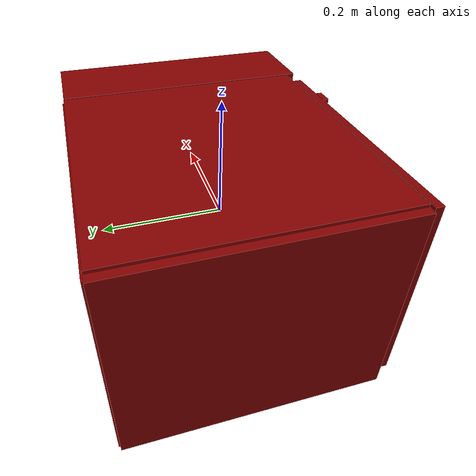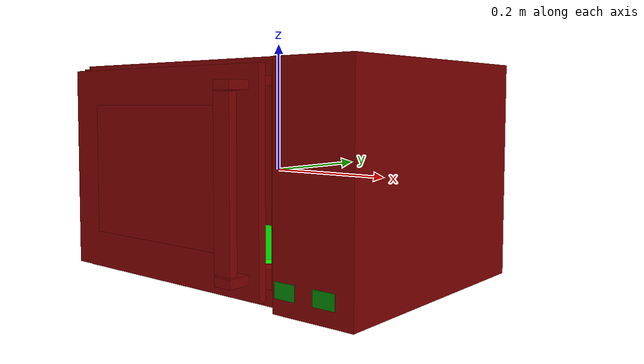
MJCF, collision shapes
<?xml version='1.0' encoding='UTF-8'?>
<mujoco model="model">
  <option timestep="0.002" gravity="0.0 0.0 -9.81"/>
  <compiler angle="radian"/>
  <asset>
    <mesh file="visuals/door.obj" name="door_vis"/>
    <mesh file="visuals/door_Clear.obj" name="door_Clear_vis"/>
    <mesh file="visuals/Body001.obj" name="Body001_vis"/>
    <mesh file="visuals/Disc001.obj" name="Disc001_vis"/>
    <texture file="visuals/T_BC001.png" name="Body001_material" type="2d"/>
    <material name="Body001_material" rgba="1 1 1 1.0" texture="Body001_material" shininess="0.2512328028678894" specular="1.5"/>
    <texture file="visuals/T_BC001.png" name="door_material" type="2d"/>
    <material name="door_material" rgba="1 1 1 1.0" texture="door_material" shininess="0.2512328028678894" specular="1"/>
    <texture file="visuals/T_BC001.png" name="door_Clear_material" type="2d"/>
    <material name="door_Clear_material" rgba="1 1 1 0.8999999761581421" texture="door_Clear_material" shininess="0.2512328028678894" specular="0.3103448502657381"/>
    <texture file="visuals/T_BC001.png" name="Disc001_material" type="2d"/>
    <material name="Disc001_material" rgba="1 1 1 1.0" texture="Disc001_material" shininess="0.2512328028678894" specular="2"/>
  </asset>
  <default>
    <default class="visual">
      <geom conaffinity="0" contype="0" group="1" type="mesh"/>
    </default>
    <default class="collision">
      <geom group="0" rgba="0.5 0 0 0.5"/>
    </default>
    <default class="spawn">
      <geom group="0" rgba="1 1 1 0.5" contype="0" conaffinity="0"/>
      <site group="0" rgba="1 1 1 0.5"/>
    </default>
    <default class="region">
      <geom group="1" conaffinity="0" contype="0" rgba="0 1 0 0"/>
    </default>
  </default>
  <worldbody>
    <body>
      <body name="object">
        <geom class="collision" type="box" pos="0.18293899297714233 -0.1981738805770874 -0.13036344945430756" size="0.01684289053082466 0.0006300018285401165 0.010966268368065357" quat="1.0 0.0 0.0 0.0" name="start_button" rgba="0.0 0.5 0 0.5"/>
        <geom class="collision" type="box" pos="0.24534033238887787 -0.1981738805770874 -0.13036344945430756" size="0.016928493976593018 0.0006300018285401165 0.010966268368065357" quat="1.0 0.0 0.0 0.0" name="stop_button" rgba="0.0 0.5 0 0.5"/>
        <geom class="collision" type="cylinder" pos="-0.07113268226385117 0.0006413441151380539 -0.12782007455825806" size="0.15812909603118896 0.002860583132132888" quat="1.0 0.0 0.0 0.0" name="tray" rgba="0 1 0 0.5"/>
        <geom mesh="Body001_vis" type="mesh" solimp="0.998 0.998 0.001" solref="0.001 1" friction="0.95 0.3 0.1" class="visual" material="Body001_material"/>
        <geom class="collision" type="box" pos="-0.2728177011013031 0.027951937168836594 7.176101644290611e-05" size="0.008947286754846573 0.19885210692882538 0.16316239535808563" quat="1.0 0.0 0.0 0.0"/>
        <geom class="collision" type="box" pos="0.21707670390605927 0.02016056515276432 -0.0002234403509646654" size="0.06462284922599792 0.20664341747760773 0.1670026332139969" quat="1.0 0.0 0.0 0.0"/>
        <geom class="collision" type="box" pos="-0.0608646459877491 0.027951937168836594 0.15541014075279236" size="0.20821607112884521 0.19885195791721344 0.012293873354792595" quat="1.0 0.0 0.0 0.0"/>
        <geom class="collision" type="box" pos="-0.0608646459877491 0.027951937168836594 -0.15294884145259857" size="0.20821599662303925 0.19885188341140747 0.011664646677672863" quat="1.0 0.0 0.0 0.0"/>
        <geom class="collision" type="box" pos="-0.060661040246486664 0.21502146124839783 -0.00412425771355629" size="0.21311542391777039 0.014646400697529316 0.16310159862041473" quat="1.0 0.0 0.0 0.0"/>
        <geom class="collision" type="box" pos="0.1478929966688156 0.027951937168836594 7.176101644290611e-05" size="0.01068952213972807 0.1988515406847 0.16316182911396027" quat="1.0 0.0 0.0 0.0"/>
        <body name="door">
          <joint axis="0.0 0.0 1.0" pos="-0.271359384059906 -0.1857687532901764 0.004497513175010681" limited="true" name="microjoint" range="-1.5707963267948966 0.0" type="hinge" damping="1" frictionloss="1" armature=".01" stiffness="0.05"/>
          <geom mesh="door_vis" type="mesh" solimp="0.998 0.998 0.001" solref="0.001 1" friction="0.95 0.3 0.1" class="visual" material="door_material"/>
          <geom class="collision" type="box" pos="-0.06824018061161041 -0.1885715126991272 0.002668659668415785" size="0.1474888175725937 0.006335529964417219 0.1014292985200882" quat="1.0 0.0 0.0 0.0"/>
          <geom class="collision" type="box" pos="-0.06598768383264542 -0.1885715126991272 0.00192365818656981" size="0.2024165242910385 0.0063354335725307465 0.15705420076847076" quat="1.0 0.0 0.0 0.0" name="door_main"/>
          <geom class="collision" type="box" pos="0.10424041748046875 -0.21203388273715973 -0.12615413963794708" size="0.014594078995287418 0.01874697208404541 0.006589120719581842" quat="1.0 0.0 0.0 0.0"/>
          <geom class="collision" type="box" pos="0.10424041748046875 -0.21203388273715973 0.13083593547344208" size="0.014594083651900291 0.01874697580933571 0.006589120719581842" quat="1.0 0.0 0.0 0.0"/>
          <geom class="collision" type="box" pos="0.10424041748046875 -0.22426162660121918 0.0026686619967222214" size="0.014594103209674358 0.006589098833501339 0.12007754296064377" quat="1.0 0.0 0.0 0.0" name="door_handle_main"/>
          <body name="door_Clear">
            <geom mesh="door_Clear_vis" type="mesh" solimp="0.998 0.998 0.001" solref="0.001 1" friction="0.95 0.3 0.1" class="visual" material="door_Clear_material"/>
            <geom class="collision" type="box" pos="-0.06824018061161041 -0.1885715126991272 0.002668659668415785" size="0.1474888175725937 0.006335529964417219 0.1014292985200882" quat="1.0 0.0 0.0 0.0"/>
          </body>
        </body>
        <body name="Disc001">
          <joint axis="0.0 0.0 1.0" pos="-0.0709797590970993 0.0007681597489863634 -0.1304275542497635" limited="false" name="Disc001_joint" range="0 360" type="hinge" damping="1" frictionloss="1" armature=".01" stiffness="0.05"/>
          <geom mesh="Disc001_vis" type="mesh" solimp="0.998 0.998 0.001" solref="0.001 1" friction="0.95 0.3 0.1" class="visual" material="Disc001_material"/>
          <geom class="collision" type="cylinder" pos="-0.07109486311674118 1.1975027192079324e-08 -0.13534541428089142" size="0.16072608530521393 0.0034849627409130335" quat="1.0 0.0 0.0 0.0"/>
        </body>
        <geom class="region" name="reg_int" type="box" pos="-0.06192496418952942 0.013777941465377808 0.0047501735389232635" size="0.19276989793777466 0.18027613854408264 0.13070956042408943"/>
        <geom class="region" name="reg_main" type="box" pos="0.0 0.017531342804431915 7.450580596923828e-09" size="0.2827768454551697 0.21445826983451843 0.1699004898071289"/>
      <geom class="region" name="reg_tray" type="cylinder" pos="-0.07113268226385117 0.0006413441151380539 0.005250121268443764" size="0.15812909603118896 0.12920961269456893"/></body>
    </body>
  </worldbody>
  <actuator>
    <motor name="microjoint_actuator" joint="microjoint" gear="10"/>
    <motor name="Disc001_joint_actuator" joint="Disc001_joint" gear="10"/>
  </actuator>
</mujoco>
